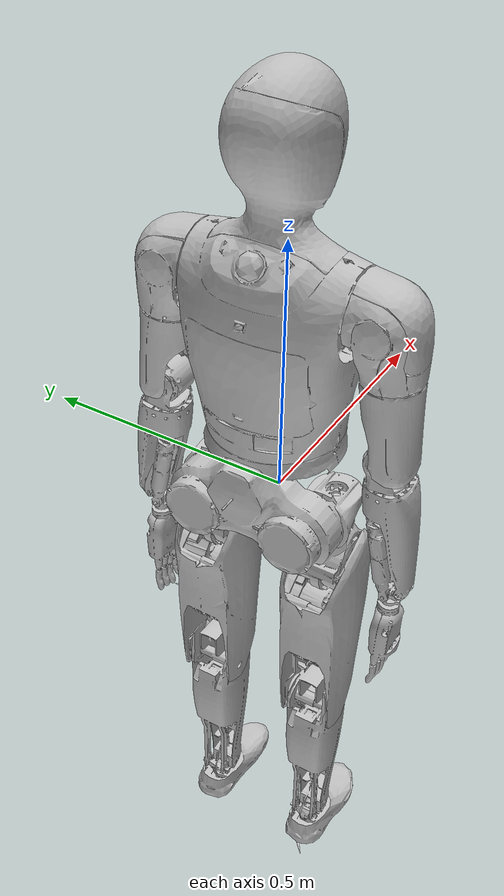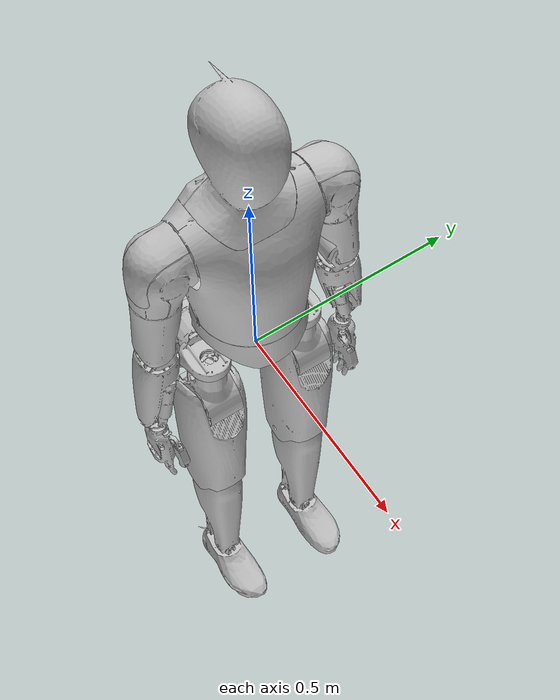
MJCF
<?xml version='1.0' encoding='utf-8'?>
<mujoco model="Magicbot-Gen1">
  <compiler angle="radian" boundmass="1e-06" boundinertia="1e-08" meshdir=".." />
  <asset>
    <mesh name="mesh_1" content_type="model/stl" file="meshes/pelvis.STL" />
    <mesh name="mesh_3" content_type="model/stl" file="meshes/LINK_HIP_ROLL_L.STL" />
    <mesh name="mesh_5" content_type="model/stl" file="meshes/LINK_HIP_YAW_L.STL" />
    <mesh name="mesh_7" content_type="model/stl" file="meshes/LINK_HIP_PITCH_L.STL" />
    <mesh name="mesh_9" content_type="model/stl" file="meshes/LINK_KNEE_PITCH_L.STL" />
    <mesh name="mesh_11" content_type="model/stl" file="meshes/LINK_ANKLE_PITCH_L.STL" />
    <mesh name="mesh_13" content_type="model/stl" file="meshes/LINK_ANKLE_ROLL_L.STL" />
    <mesh name="mesh_15" content_type="model/stl" file="meshes/LINK_HIP_ROLL_R.STL" />
    <mesh name="mesh_17" content_type="model/stl" file="meshes/LINK_HIP_YAW_R.STL" />
    <mesh name="mesh_19" content_type="model/stl" file="meshes/LINK_HIP_PITCH_R.STL" />
    <mesh name="mesh_21" content_type="model/stl" file="meshes/LINK_KNEE_PITCH_R.STL" />
    <mesh name="mesh_23" content_type="model/stl" file="meshes/LINK_ANKLE_PITCH_R.STL" />
    <mesh name="mesh_25" content_type="model/stl" file="meshes/LINK_ANKLE_ROLL_R.STL" />
    <mesh name="mesh_27" content_type="model/stl" file="meshes/link_wr.STL" />
    <mesh name="mesh_29" content_type="model/stl" file="meshes/link_wy.STL" />
    <mesh name="mesh_31" content_type="model/stl" file="meshes/link_hy.STL" />
    <mesh name="mesh_33" content_type="model/stl" file="meshes/link_hp.STL" />
    <mesh name="mesh_35" content_type="model/stl" file="meshes/link_la1.STL" />
    <mesh name="mesh_37" content_type="model/stl" file="meshes/link_la2.STL" />
    <mesh name="mesh_39" content_type="model/stl" file="meshes/link_la3.STL" />
    <mesh name="mesh_41" content_type="model/stl" file="meshes/link_la4.STL" />
    <mesh name="mesh_43" content_type="model/stl" file="meshes/link_la5.STL" />
    <mesh name="mesh_45" content_type="model/stl" file="meshes/link_la6.STL" />
    <mesh name="mesh_47" content_type="model/stl" file="meshes/link_la7.STL" />
    <mesh name="mesh_49" content_type="model/stl" file="meshes/link_ra1.STL" />
    <mesh name="mesh_51" content_type="model/stl" file="meshes/link_ra2.STL" />
    <mesh name="mesh_53" content_type="model/stl" file="meshes/link_ra3.STL" />
    <mesh name="mesh_55" content_type="model/stl" file="meshes/link_ra4.STL" />
    <mesh name="mesh_57" content_type="model/stl" file="meshes/link_ra5.STL" />
    <mesh name="mesh_59" content_type="model/stl" file="meshes/link_ra6.STL" />
    <mesh name="mesh_61" content_type="model/stl" file="meshes/link_ra7.STL" />
  </asset>
  <worldbody>
    <body name="pelvis">
      <inertial pos="-0.0510448 -0.000418963 0.251281" quat="0.989776 0.0132235 -0.0610961 -0.128204" mass="26.9109" diaginertia="1.24976 1.23062 0.302592" />
      <joint type="free" />
      <geom type="mesh" rgba="0.75294 0.75294 0.75294 1" mesh="mesh_1" />
      <geom pos="-0.016 0 0.083" quat="1 0 0 0" type="mesh" rgba="0.75294 0.75294 0.75294 1" mesh="mesh_27" />
      <geom pos="-0.016 0 0.083" type="mesh" rgba="0.75294 0.75294 0.75294 1" mesh="mesh_29" />
      <geom pos="-0.0219657 0 0.58408" quat="1 0 0 0" type="mesh" rgba="0.75294 0.75294 0.75294 1" mesh="mesh_31" />
      <geom pos="-0.0284657 2.3658e-05 0.58408" quat="1 0 0 0" type="mesh" rgba="0.75294 0.75294 0.75294 1" mesh="mesh_33" />
      <body name="LINK_HIP_ROLL_L" pos="0 0.1175 0">
        <inertial pos="-0.0307534 -3.55e-06 0.0214845" quat="2.72134e-06 0.528952 -2.59562e-05 0.848652" mass="0.47382" diaginertia="0.000912726 0.0007199 0.000528614" />
        <joint name="JOINT_HIP_ROLL_L" pos="0 0 0" axis="1 0 0" range="-0.349 0.523" actuatorfrcrange="-360 360" />
        <geom type="mesh" rgba="0.75294 0.75294 0.75294 1" mesh="mesh_3" />
        <body name="LINK_HIP_YAW_L">
          <inertial pos="-0.00106248 -0.00273398 -0.0817245" quat="0.514355 0.484575 0.501153 0.499472" mass="3.38318" diaginertia="0.00742219 0.00742219 0.00742219" />
          <joint name="JOINT_HIP_YAW_L" pos="0 0 0" axis="0 0 1" range="-0.262 0.523" actuatorfrcrange="-60 60" />
          <geom type="mesh" rgba="0.75294 0.75294 0.75294 1" mesh="mesh_5" />
          <body name="LINK_HIP_PITCH_L" pos="0 0 -0.118">
            <inertial pos="-0.0129337 -0.00410579 -0.155921" quat="0.713768 0.0111618 0.0128312 0.700176" mass="5.04878" diaginertia="0.0569722 0.0545631 0.01567" />
            <joint name="JOINT_HIP_PITCH_L" pos="0 0 0" axis="0 1 0" range="-2.093 0.698" actuatorfrcrange="-360 360" />
            <geom type="mesh" rgba="0.75294 0.75294 0.75294 1" mesh="mesh_7" />
            <body name="LINK_KNEE_PITCH_L" pos="-0.03295 0 -0.3875">
              <inertial pos="0.0288334 0.00126447 -0.12048" quat="0.728342 -0.0188859 -0.0118525 0.684851" mass="3.37617" diaginertia="0.0487493 0.0484897 0.00486254" />
              <joint name="JOINT_KNEE_PITCH_L" pos="0 0 0" axis="0 1 0" range="0 2.617" actuatorfrcrange="-360 360" />
              <geom type="mesh" rgba="0.75294 0.75294 0.75294 1" mesh="mesh_9" />
              <body name="LINK_ANKLE_PITCH_L" pos="0.035056 0 -0.3867">
                <inertial pos="0 0 -0.00869504" quat="0.5 0.5 0.5 0.5" mass="0.0724143" diaginertia="1.156e-05 1.127e-05 1.073e-05" />
                <joint name="JOINT_ANKLE_PITCH_L" pos="0 0 0" axis="0 1 0" range="-1.308 0.523" actuatorfrcrange="-120 120" />
                <geom type="mesh" rgba="0.75294 0.75294 0.75294 1" mesh="mesh_11" />
                <body name="LINK_ANKLE_ROLL_L" pos="0 0 -0.01">
                  <inertial pos="0.0181629 0.00118755 -0.0261397" quat="0.0419233 0.749639 0.0481793 0.658758" mass="0.801308" diaginertia="0.0038524 0.00377511 0.000670562" />
                  <joint name="JOINT_ANKLE_ROLL_L" pos="0 0 0" axis="1 0 0" range="-0.349 0.349" actuatorfrcrange="-120 120" />
                  <geom type="mesh" rgba="0.75294 0.75294 0.75294 1" mesh="mesh_13" />
                </body>
              </body>
            </body>
          </body>
        </body>
      </body>
      <body name="LINK_HIP_ROLL_R" pos="0 -0.1175 0">
        <inertial pos="-0.0307534 -3.59e-06 0.0214845" quat="2.72134e-06 0.528952 -2.59562e-05 0.848652" mass="0.473833" diaginertia="0.000912726 0.0007199 0.000528614" />
        <joint name="JOINT_HIP_ROLL_R" pos="0 0 0" axis="1 0 0" range="-0.523 0.349" actuatorfrcrange="-360 360" />
        <geom type="mesh" rgba="0.75294 0.75294 0.75294 1" mesh="mesh_15" />
        <body name="LINK_HIP_YAW_R">
          <inertial pos="-0.00100961 0.00273909 -0.081705" quat="0.712797 0.0121854 -0.00794719 0.70122" mass="3.38317" diaginertia="0.0158115 0.0144407 0.00468985" />
          <joint name="JOINT_HIP_YAW_R" pos="0 0 0" axis="0 0 1" range="-0.523 0.262" actuatorfrcrange="-60 60" />
          <geom type="mesh" rgba="0.75294 0.75294 0.75294 1" mesh="mesh_17" />
          <body name="LINK_HIP_PITCH_R" pos="0 0 -0.118">
            <inertial pos="-0.0116084 0.00408093 -0.155398" quat="0.669095 0.00313739 0.00263166 0.743166" mass="5.04802" diaginertia="0.0553991 0.0538462 0.0147466" />
            <joint name="JOINT_HIP_PITCH_R" pos="0 0 0" axis="0 1 0" range="-2.093 0.698" actuatorfrcrange="-360 360" />
            <geom type="mesh" rgba="0.75294 0.75294 0.75294 1" mesh="mesh_19" />
            <body name="LINK_KNEE_PITCH_R" pos="-0.032951 0 -0.3875">
              <inertial pos="0.0288152 -0.00126424 -0.120528" quat="0.682853 -0.0118312 -0.0188198 0.730218" mass="3.37419" diaginertia="0.0487347 0.0484735 0.00486017" />
              <joint name="JOINT_KNEE_PITCH_R" pos="0 0 0" axis="0 1 0" range="0 2.617" actuatorfrcrange="-360 360" />
              <geom type="mesh" rgba="0.75294 0.75294 0.75294 1" mesh="mesh_21" />
              <body name="LINK_ANKLE_PITCH_R" pos="0.035003 0 -0.3867">
                <inertial pos="-1.27e-06 -4.51e-06 -0.00869518" quat="0.5 0.5 0.5 0.5" mass="0.0724143" diaginertia="1.156e-05 1.127e-05 1.073e-05" />
                <joint name="JOINT_ANKLE_PITCH_R" pos="0 0 0" axis="0 1 0" range="-1.308 0.523" actuatorfrcrange="-120 120" />
                <geom type="mesh" rgba="0.75294 0.75294 0.75294 1" mesh="mesh_23" />
                <body name="LINK_ANKLE_ROLL_R" pos="0 0 -0.01" quat="1 2.0446e-05 7.4275e-05 -1.51863e-09">
                  <inertial pos="0.0173464 -0.00124434 -0.0259356" quat="-0.046951 0.749545 -0.0530177 0.658154" mass="0.794245" diaginertia="0.00374197 0.00366589 0.000665126" />
                  <joint name="JOINT_ANKLE_ROLL_R" pos="0 0 0" axis="1 0 0" range="-0.349 0.349" actuatorfrcrange="-120 120" />
                  <geom type="mesh" rgba="0.75294 0.75294 0.75294 1" mesh="mesh_25" />
                </body>
              </body>
            </body>
          </body>
        </body>
      </body>
      <body name="link_la1" pos="-0.0238982 0.19799 0.429">
        <inertial pos="-0.0230533 -0.00946438 -0.243282" quat="0.699645 -0.0223183 0.0285307 0.713572" mass="6.59585" diaginertia="0.342689 0.339644 0.0276907" />
        <joint name="joint_la1" pos="0 0 0" axis="0 1 0" range="-2.756 2.756" actuatorfrcrange="-110 110" />
        <geom type="mesh" rgba="0.75294 0.75294 0.75294 1" mesh="mesh_35" />
        <geom type="mesh" rgba="0.75294 0.75294 0.75294 1" mesh="mesh_37" />
        <geom pos="0 0.015686 -0.10553" quat="0.999048 0.0436197 0 0" type="mesh" rgba="0.75294 0.75294 0.75294 1" mesh="mesh_39" />
        <geom pos="-0.00074295 0.0239563 -0.257377" quat="0.999052 0.0435284 7.87916e-05 -2.09625e-05" type="mesh" rgba="0.75294 0.75294 0.75294 1" mesh="mesh_41" />
        <geom pos="-0.00074295 0.0239563 -0.257377" quat="0.999052 0.0435284 7.87916e-05 -2.09625e-05" type="mesh" rgba="0.75294 0.75294 0.75294 1" mesh="mesh_43" />
        <geom pos="-0.000788142 0.0734817 -0.552036" quat="0.999052 0.0435284 7.87916e-05 -2.09625e-05" type="mesh" rgba="0.75294 0.75294 0.75294 1" mesh="mesh_45" />
        <geom pos="-0.000788142 0.0734817 -0.552036" quat="0.999052 0.0435284 7.87916e-05 -2.09625e-05" type="mesh" rgba="0.75294 0.75294 0.75294 1" mesh="mesh_47" />
      </body>
      <body name="link_ra1" pos="-0.0239 -0.198 0.429">
        <inertial pos="0.0173814 0.0151438 -0.246451" quat="0.452599 -0.0490721 -0.069609 0.887638" mass="6.59585" diaginertia="0.337007 0.328311 0.0318203" />
        <joint name="joint_ra1" pos="0 0 0" axis="0 1 0" range="-2.756 2.756" actuatorfrcrange="-110 110" />
        <geom type="mesh" rgba="0.75294 0.75294 0.75294 1" mesh="mesh_49" />
        <geom type="mesh" rgba="0.75294 0.75294 0.75294 1" mesh="mesh_51" />
        <geom pos="1.2039e-05 -0.015686 -0.10553" quat="0.999048 -0.0436197 0 0" type="mesh" rgba="0.75294 0.75294 0.75294 1" mesh="mesh_53" />
        <geom pos="0.000754989 -0.0239563 -0.257377" quat="0.999052 -0.0435284 -7.87916e-05 -2.09625e-05" type="mesh" rgba="0.75294 0.75294 0.75294 1" mesh="mesh_55" />
        <geom pos="0.000754989 -0.0239563 -0.257377" quat="0.999052 -0.0435284 -7.87916e-05 -2.09625e-05" type="mesh" rgba="0.75294 0.75294 0.75294 1" mesh="mesh_57" />
        <geom pos="0.000800181 -0.0734817 -0.552036" quat="0.999052 -0.0435284 -7.87916e-05 -2.09625e-05" type="mesh" rgba="0.75294 0.75294 0.75294 1" mesh="mesh_59" />
        <geom pos="0.000800181 -0.0734817 -0.552036" quat="0.999052 -0.0435284 -7.87916e-05 -2.09625e-05" type="mesh" rgba="0.75294 0.75294 0.75294 1" mesh="mesh_61" />
      </body>
    </body>
  </worldbody>
</mujoco>
